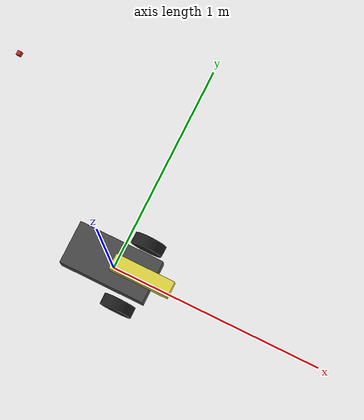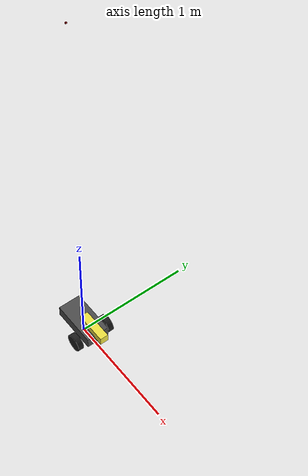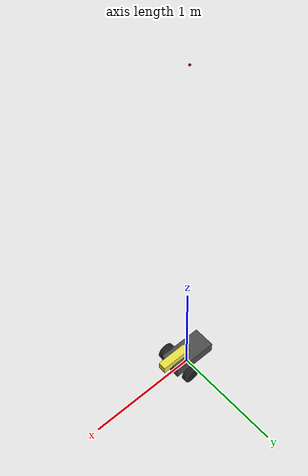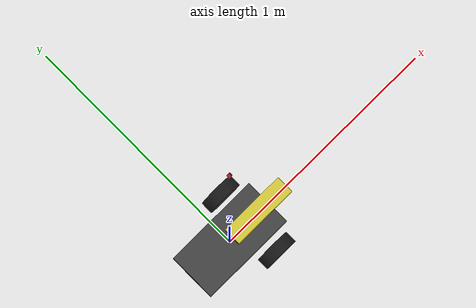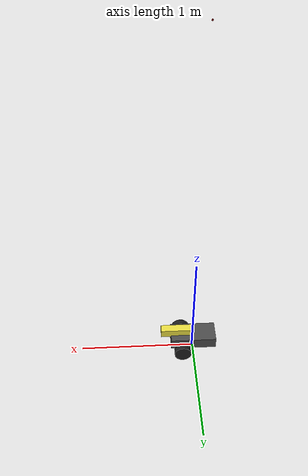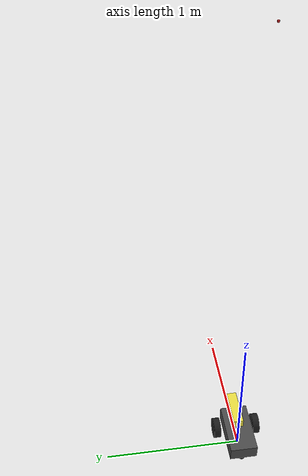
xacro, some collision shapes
<?xml version='1.0'?>

<robot name="ABot" xmlns:xacro="http://www.ros.org/wiki/xacro">

<xacro:include filename="$(find gazebo_demo)/urdf/ABot_kinect.xacro"/>

<!-- RGBD Camera -->
  <gazebo reference="kinect_baselink"> <!-- reference must match the name of the link in the Xacro URDF -->
    <sensor type="depth" name="kinect"> <!-- The name must be unique from all other sensor names -->
        <always_on>1</always_on>
        <update_rate>30.0</update_rate>
        <visualize>true</visualize>
        <camera>
            <horizontal_fov>1.047</horizontal_fov>
            <image>
                <width>640</width>
                <height>480</height>
                <format>R8G8B8</format>
            </image>
            <depth_camera>

            </depth_camera>
            <clip>
                <near>0.05</near>
                <far>20</far>
            </clip>
        </camera>
             <!-- link to the camera's shared object file -->
             <plugin name="kinect_controller" filename="libgazebo_ros_openni_kinect.so">
             <alwaysOn>true</alwaysOn>
                <updateRate>30.0</updateRate>
                <!-- namespaces to avoid collision with other topics -->
                <cameraName>kinect</cameraName>
                <!-- The coordinate frame the point cloud image is published under in the tf tree -->
                <!-- Rotate this frame in urdf/xacro file if point cloud is not correctly oriented in Rviz -->
                <frameName>camera_link</frameName>

            <!--topic the camera will be publishing to (image, info, depth image, point cloud -->
            <imageTopicName>/camera/image_raw</imageTopicName>
            <depthImageTopicName>/kinect/depth/image_raw</depthImageTopicName>
            <pointCloudTopicName>/kinect/depth/points</pointCloudTopicName>
            <cameraInfoTopicName>/kinect/color/camera_info</cameraInfoTopicName>
            <depthImageCameraInfoTopicName>/kinect/depth/camera_info</depthImageCameraInfoTopicName>

            <pointCloudCutoff>0.4</pointCloudCutoff>
                <hackBaseline>0.07</hackBaseline>
                <distortionK1>0.0</distortionK1>
                <distortionK2>0.0</distortionK2>
                <distortionK3>0.0</distortionK3>
                <distortionT1>0.0</distortionT1>
                <distortionT2>0.0</distortionT2>
            <CxPrime>0.0</CxPrime>
            <Cx>0.0</Cx>
            <Cy>0.0</Cy>
            <focalLength>0.0</focalLength>
            </plugin>
    </sensor>
  </gazebo>

  <link name="base_link">
  <inertial>
    <origin xyz="0 0 0.125" />
    <mass value="5" />
    <inertia  ixx="0.1" ixy="0.0"  ixz="0.0"  iyy="0.1"  iyz="0.0"  izz="0.1" />
  </inertial>
  <visual>
    <origin xyz="0 0 0.125"/>
    <geometry>
      <box size="0.4 0.2 0.1" />
    </geometry>
  </visual>
  <collision>
    <origin xyz="0 0 0.125"/>
    <geometry>
      <box size="0.4 0.2 0.1" />
    </geometry>
  </collision>
  </link>

  <gazebo reference="base_link">
    <material>Gazebo/DarkGrey</material>
  </gazebo>

  <link name="right_wheel">
  <inertial>
    <origin rpy="1.5707963267948966 0 0" xyz="0 0 0" />
    <mass value="0.1" />
    <inertia  ixx="0.01" ixy="0.0"  ixz="0.0"  iyy="0.01"  iyz="0.0"  izz="0.01" />
  </inertial>
  <visual>
    <origin rpy="1.5707963267948966 0 0" xyz="0 0 0"/>
    <geometry>
      <cylinder length="0.05" radius="0.075"/>
    </geometry>
  </visual>
  <collision>
    <origin rpy="1.5707963267948966 0 0" xyz="0 0 0"/>
    <geometry>
      <cylinder length="0.05" radius="0.075"/>
    </geometry>
  </collision>
  </link>

  <gazebo reference="right_wheel">
    <material>Gazebo/Black</material>
  </gazebo>

  <joint name="base_link_right_wheel" type="continuous">
    <parent link="base_link"/>
    <child link="right_wheel"/>
    <axis xyz="0 1 0"/>
    <origin xyz="0.1 -0.15 0.075"/>
  </joint>

  <transmission name="T_base_link_right_wheel">
    <type>transmission_interface/SimpleTransmission</type>
    <actuator name="motor_1">
      <mechanicalReduction>1</mechanicalReduction>
      <hardwareInterface>hardware_interface/VelocityJointInterface</hardwareInterface>
    </actuator>
    <joint name="base_link_right_wheel">
      <hardwareInterface>hardware_interface/VelocityJointInterface</hardwareInterface>
    </joint>
  </transmission>

  <link name="left_wheel">
  <inertial>
    <origin rpy="1.5707963267948966 0 0" xyz="0 0 0" />
    <mass value="0.1" />
    <inertia  ixx="0.01" ixy="0.0"  ixz="0.0"  iyy="0.01"  iyz="0.0"  izz="0.01" />
  </inertial>
  <visual>
    <origin rpy="1.5707963267948966 0 0" xyz="0 0 0"/>
    <geometry>
      <cylinder length="0.05" radius="0.075"/>
    </geometry>
  </visual>
  <collision>
    <origin rpy="1.5707963267948966 0 0" xyz="0 0 0"/>
    <geometry>
      <cylinder length="0.05" radius="0.075"/>
    </geometry>
  </collision>
  </link>

  <gazebo reference="left_wheel">
    <material>Gazebo/Black</material>
  </gazebo>

  <joint name="base_link_left_wheel" type="continuous">
    <parent link="base_link"/>
    <child link="left_wheel"/>
    <axis xyz="0 1 0"/>
    <origin xyz="0.1 0.15 0.075"/>
  </joint>

  <transmission name="T_base_link_left_wheel">
    <type>transmission_interface/SimpleTransmission</type>
    <actuator name="motor_2">
      <mechanicalReduction>1</mechanicalReduction>
      <hardwareInterface>hardware_interface/VelocityJointInterface</hardwareInterface>
    </actuator>
    <joint name="base_link_left_wheel">
      <hardwareInterface>hardware_interface/VelocityJointInterface</hardwareInterface>
    </joint>
  </transmission>

  <link name="back_wheel">
  <inertial>
    <origin rpy="1.5707963267948966 0 0" xyz="0 0 0" />
    <mass value="0.1" />
    <inertia  ixx="0.01" ixy="0.0"  ixz="0.0"  iyy="0.01"  iyz="0.0"  izz="0.01" />
  </inertial>
  <visual>
    <origin rpy="1.5707963267948966 0 0" xyz="0 0 0"/>
    <geometry>
      <sphere length="0.1" radius="0.025"/>
    </geometry>
  </visual>
  <collision>
    <origin rpy="1.5707963267948966 0 0" xyz="0 0 0"/>
    <geometry>
      <sphere length="0.1" radius="0.025"/>
    </geometry>
  </collision>
      <surface>
        <friction>
          <ode>
            <mu>0.000001</mu>
            <mu2>0.000001</mu2>
          </ode>
        </friction>
      </surface>
  </link>

   <joint name="base_link_back_wheel" type="fixed">
    <parent link="base_link"/>
    <child link="back_wheel"/>
    <axis xyz="0 1 1"/>
    <origin xyz="-0.15 0 0.025"/>
  </joint>

  <gazebo reference="back_wheel">
    <material>Gazebo/Black</material>
    <mu1>0.000001</mu1>
    <mu2>0.000001</mu2>
  </gazebo>

<link name="camera_link">
    <collision>
      <origin xyz="0 0 0" rpy="0 0 0"/>
      <geometry>
    <box size="0.01 0.01 0.01"/>
      </geometry>
    </collision>

    <visual>
      <origin xyz="0 0 0" rpy="0 0 0"/>
      <geometry>
    <box size="0.01 0.01 0.01"/>
      </geometry>
      <material name="red"/>
    </visual>

    <inertial>
      <mass value="1e-5" />
      <origin xyz="0 0 0" rpy="0 0 0"/>
      <inertia ixx="1e-6" ixy="0" ixz="0" iyy="1e-6" iyz="0" izz="1e-6" />
    </inertial>
  </link>

<gazebo reference="camera_link">
    <material>Gazebo/Black</material>
    <mu1>0.000001</mu1>
    <mu2>0.000001</mu2>
  </gazebo>

<link name="camera_link_2">
    <collision>
      <origin xyz="0 0 0" rpy="0 0 0"/>
      <geometry>
    <box size="0.01 0.01 0.01"/>
      </geometry>
    </collision>

    <visual>
      <origin xyz="0 0 0" rpy="0 0 0"/>
      <geometry>
    <box size="0.01 0.01 0.01"/>
      </geometry>
      <material name="red"/>
    </visual>

    <inertial>
      <mass value="1e-5" />
      <origin xyz="0 0 0" rpy="0 0 0"/>
      <inertia ixx="1e-6" ixy="0" ixz="0" iyy="1e-6" iyz="0" izz="1e-6" />
    </inertial>
  </link>

<joint name="kinect_joint" type="fixed">
    <axis xyz="0 1 0" />
    <origin xyz="0.15 0 0.2" rpy="0 0 0"/>
    <parent link="base_link"/>
    <child link="kinect_baselink"/>
  </joint>

<joint name="camera_joint" type="fixed">
    <axis xyz="0 0 0" />
    <origin xyz="0.2 0 0.175" rpy="0 0 0"/>
    <parent link="base_link"/>
    <child link="camera_link"/>
  </joint>

<joint name="camera_joint_2" type="fixed">
    <axis xyz="0 0 0" />
    <origin xyz="0 0 3.3" rpy="0 1.25 0"/>
    <parent link="base_link"/>
    <child link="camera_link_2"/>
  </joint>

<gazebo reference="camera_link">
    <sensor type="camera" name="camera">
      <update_rate>30.0</update_rate>
      <camera name="head">
        <horizontal_fov>1.3962634</horizontal_fov>
        <image>
          <width>640</width>
          <height>480</height>
          <format>R8G8B8</format>
        </image>
        <clip>
          <near>0.02</near>
          <far>300</far>
        </clip>
        <noise>
          <type>gaussian</type>
          <!-- Noise is sampled independently per pixel on each frame.
               That pixel's noise value is added to each of its color
               channels, which at that point lie in the range [0,1]. -->
          <mean>0.0</mean>
          <stddev>0.007</stddev>
        </noise>
      </camera>
      <plugin name="camera_controller" filename="libgazebo_ros_camera.so">
        <alwaysOn>true</alwaysOn>
        <updateRate>30.0</updateRate>
        <cameraName>/camera</cameraName>
        <imageTopicName>image_raw</imageTopicName>
        <cameraInfoTopicName>camera_info</cameraInfoTopicName>
        <frameName>camera_link</frameName>
        <hackBaseline>0.07</hackBaseline>
        <distortionK1>0.0</distortionK1>
        <distortionK2>0.0</distortionK2>
        <distortionK3>0.0</distortionK3>
        <distortionT1>0.0</distortionT1>
        <distortionT2>0.0</distortionT2>
      </plugin>
    </sensor>
  </gazebo>

<gazebo reference="camera_link_2">
    <sensor type="camera" name="camera_top">
      <update_rate>30.0</update_rate>
      <camera name="head_2">
        <horizontal_fov>1.3962634</horizontal_fov>
        <image>
          <width>640</width>
          <height>480</height>
          <format>R8G8B8</format>
        </image>
        <clip>
          <near>0.02</near>
          <far>300</far>
        </clip>
        <noise>
          <type>gaussian</type>
          <!-- Noise is sampled independently per pixel on each frame.
               That pixel's noise value is added to each of its color
               channels, which at that point lie in the range [0,1]. -->
          <mean>0.0</mean>
          <stddev>0.007</stddev>
        </noise>
      </camera>
      <plugin name="camera_controller" filename="libgazebo_ros_camera.so">
        <alwaysOn>true</alwaysOn>
        <updateRate>30.0</updateRate>
        <cameraName>/camera_up</cameraName>
        <imageTopicName>image_raw_up</imageTopicName>
        <cameraInfoTopicName>camera_info_up</cameraInfoTopicName>
        <frameName>camera_link_2</frameName>
        <hackBaseline>0.07</hackBaseline>
        <distortionK1>0.0</distortionK1>
        <distortionK2>0.0</distortionK2>
        <distortionK3>0.0</distortionK3>
        <distortionT1>0.0</distortionT1>
        <distortionT2>0.0</distortionT2>
      </plugin>
    </sensor>
  </gazebo>

<gazebo>
  <plugin name="differential_drive_controller" filename="libgazebo_ros_diff_drive.so">
    <alwaysOn>true</alwaysOn>
    <updateRate>10</updateRate>
    <leftJoint>base_link_left_wheel</leftJoint>
    <rightJoint>base_link_right_wheel</rightJoint>
    <wheelSeparation>0.35</wheelSeparation>
    <wheelDiameter>0.15</wheelDiameter>
    <torque>1.41</torque>
    <commandTopic>cmd_vel</commandTopic>
    <odometryTopic>odom</odometryTopic>
    <odometryFrame>odom</odometryFrame>
    <robotBaseFrame>base_link</robotBaseFrame>
    <publishWheelJointState>true</publishWheelJointState>
    <enable_odom_tf>false</enable_odom_tf>
  </plugin>
</gazebo>

  <xacro:property name="kinect_baselink" value="0.05" />

  <xacro:property name="camera_link" value="0.05" />

  <xacro:property name="camera_link_2" value="0.05" />

</robot>

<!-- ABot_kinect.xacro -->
<robot name="sensor_kinect" xmlns:xacro="http://www.ros.org/wiki/xacro">

<!-- Configure the Gazebo differential drive controller plugin -->
<xacro:arg name="odometryTopic" default="odom" />
<xacro:arg name="odometryFrame" default="odom" />
<xacro:arg name="robotBaseFrame" default="robot_footprint" />
<xacro:arg name="diff_drive_publishTf" default="true" />
<xacro:arg name="diff_drive_publishOdomTF" default="true" />

<xacro:property name="M_PI" value="3.1415926535897931" />
<xacro:property name="cam_px" value="0" />
<xacro:property name="kinect_cam_py" value="0"/> <!-- distance of kinect base to surface to which it is fixed -->
<xacro:property name="cam_pz" value="0" />

  <!-- change to make sure point cloud displayed in rviz is correctly alligned to world -->
  <xacro:property name="cam_or" value="1.57079" />
  <xacro:property name="cam_op" value="3.14159" />
  <xacro:property name="cam_oy" value="1.57079" />

<!-- Kinect Sensor -->
  	<link name="kinect_baselink"> <!-- link name must match the name of the reference in the .gazebo file -->
    </link>

    <joint name="camera_rgb_joint" type="fixed">
      <origin xyz="${cam_px} ${kinect_cam_py} ${cam_pz}" rpy="${cam_or} ${cam_op} ${cam_oy}"/>
      <parent link="kinect_baselink"/>
      <child link="camera_rgbd_frame" />
    </joint>
    <link name="camera_rgbd_frame"/>

    <joint name="camera_rgb_optical_joint" type="fixed">
      <origin xyz="0 0 0" rpy="${-M_PI/2} 0 ${-M_PI/2}" />
      <parent link="camera_rgbd_frame" />
      <child link="camera_rgb_optical_frame" />
    </joint>
    <link name="camera_rgb_optical_frame"/>

    <joint name="camera_meash_joint" type="fixed">
      <origin xyz="0 ${-kinect_cam_py} 0" rpy="0 0 0"/>
      <parent link="camera_rgbd_frame"/>
      <child link="camera_mesh_link"/>
    </joint>
      <link name="camera_mesh_link">
      <visual>
      <!-- change to make sure mesh image is correctly rotated once depth could is rightly alligned -->
       <origin xyz="0 0 0" rpy="-1.57079 0 3.14159"/>
        <geometry>
         <mesh filename="package://gazebo_demo/urdf/kinect.dae" scale="1.0 1.0 1.0"/>
        </geometry>
      </visual>
  	  <collision>
        <origin xyz="0 0 0" rpy="-1.57079 0 3.14159"/>
  	    <geometry>
  	      <box size="0.07271 0.27794 0.073"/>
  	    </geometry>
  	  </collision>
      <inertial>
        <mass value="0.564" />
        <origin xyz="0 0 0" />
        <inertia ixx="0.003881243" ixy="0.0" ixz="0.0"
                 iyy="0.000498940" iyz="0.0"
                 izz="0.003879257" />
      </inertial>
    </link>

<!-- The fixed joints & links below are usually published by static_transformers launched by the OpenNi launch files (real robot) -->
<!-- However, for Gazebo simulation we need them, so we add them here. (Don't publish them additionally on a real robot!) -->
	<joint name="camera_depth_joint" type="fixed">
	  <origin xyz="0 ${2 * -kinect_cam_py} 0" rpy="0 0 0" />
	  <parent link="camera_rgbd_frame" />
	  <child link="camera_depth_frame" />
	</joint>
	<link name="camera_depth_frame"/>

	<joint name="camera_depth_optical_joint" type="fixed">
	  <origin xyz="0 0 0" rpy="${-M_PI/2} 0 ${-M_PI/2}" />
	  <parent link="camera_depth_frame" />
	  <child link="camera_depth_optical_frame" />
	</joint>
	<link name="camera_depth_optical_frame"/>

</robot>
